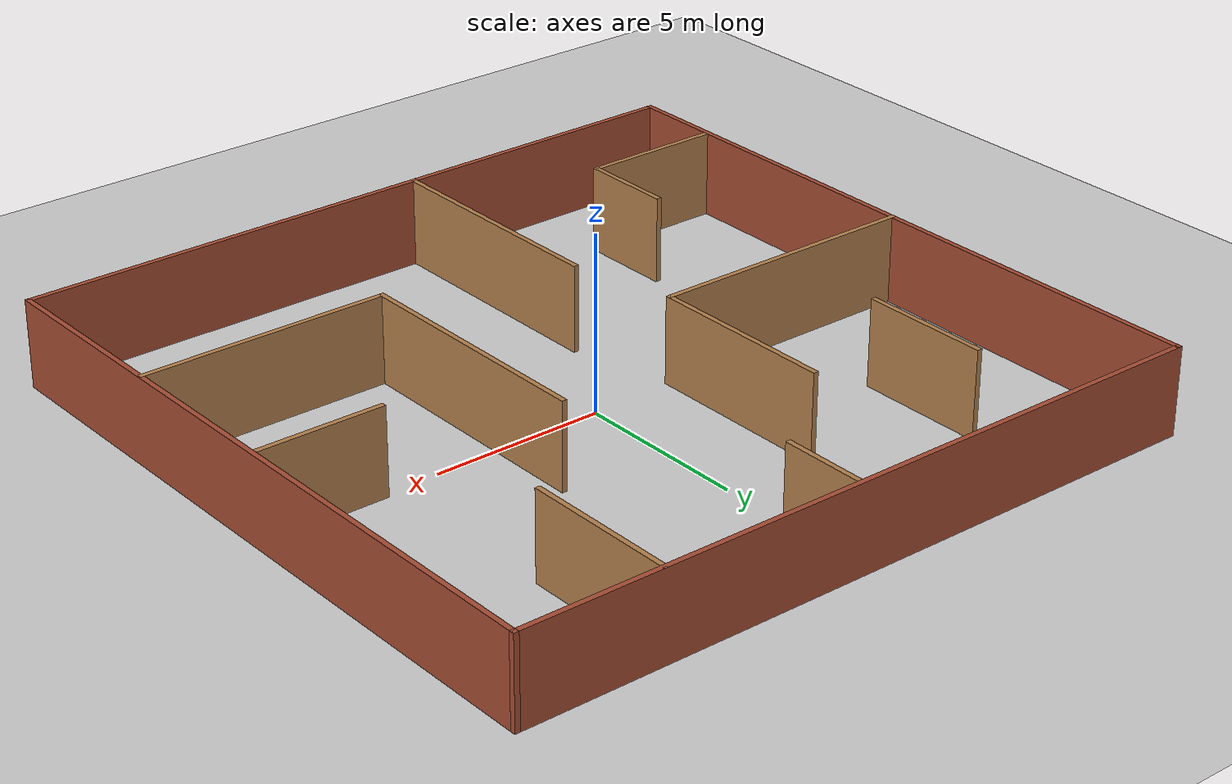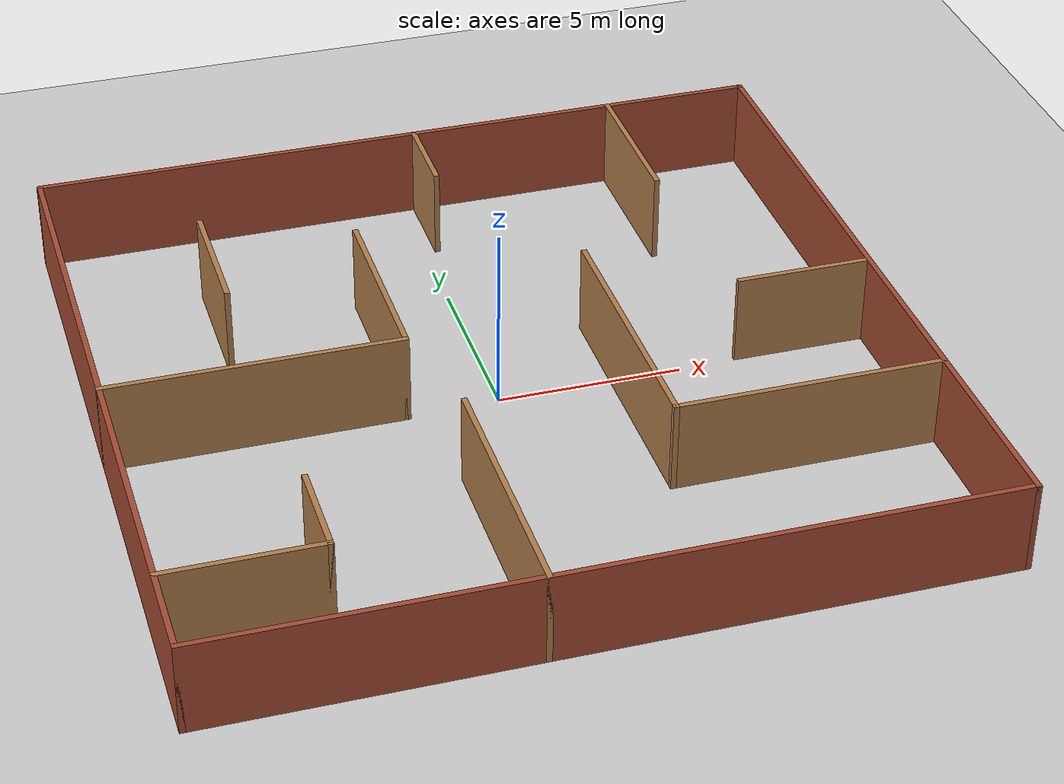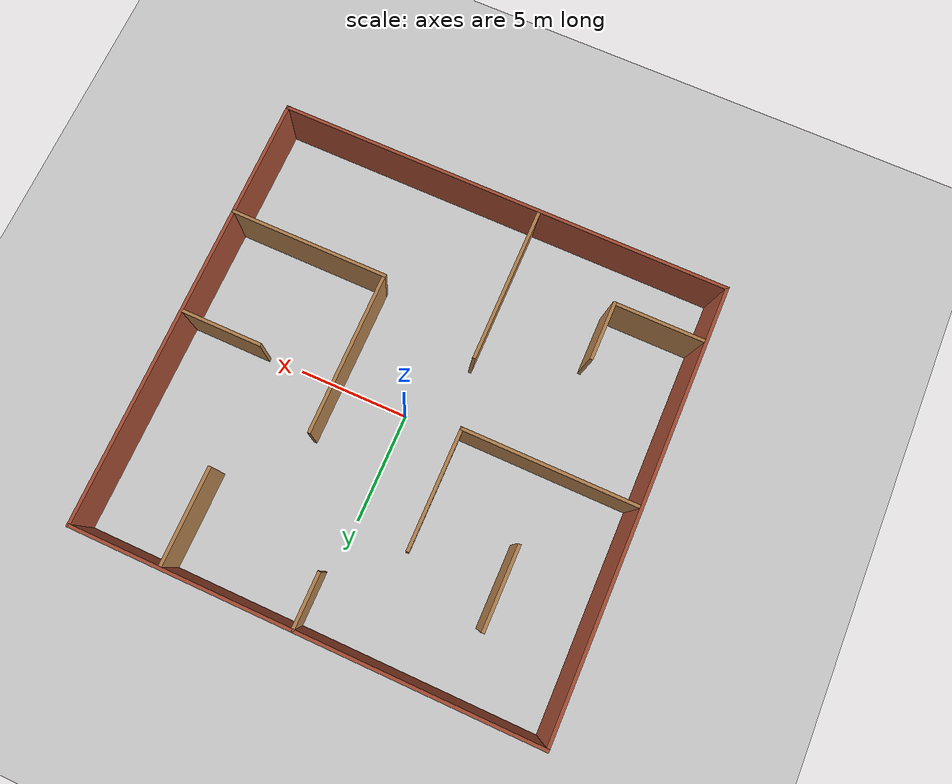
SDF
<sdf version="1.6">
 <world name="default">
  <light name="sun" type="directional">
   <pose>0 0 10 0 -0 0</pose>
   <diffuse>0.8 0.8 0.8 1</diffuse>
   <specular>0.2 0.2 0.2 1</specular>
   <attenuation>
    <range>1000</range>
    <constant>0.9</constant>
    <linear>0.01</linear>
    <quadratic>0.001</quadratic>
   </attenuation>
   <direction>-0.5 0.1 -0.9</direction>
  </light>
  <model name="ground_plane">
   <static>1</static>
   <link name="link">
    <collision name="collision">
     <geometry><plane><normal>0 0 1</normal><size>100 100</size></plane></geometry>
     <surface><friction><ode><mu>100</mu><mu2>50</mu2></ode></friction></surface>
    </collision>
    <visual name="visual">
     <cast_shadows>0</cast_shadows>
     <geometry><plane><normal>0 0 1</normal><size>100 100</size></plane></geometry>
     <material>
      <script><uri>file://media/materials/scripts/gazebo.material</uri><name>Gazebo/Grey</name></script>
     </material>
    </visual>
   </link>
  </model>
  <gravity>0 0 -9.8</gravity>
  <magnetic_field>6e-06 2.3e-05 -4.2e-05</magnetic_field>
  <atmosphere type="adiabatic"/>
  <physics name="default_physics" default="0" type="ode">
   <max_step_size>0.001</max_step_size>
   <real_time_factor>1</real_time_factor>
   <real_time_update_rate>1000</real_time_update_rate>
  </physics>
  <scene><ambient>0.4 0.4 0.4 1</ambient><background>0.7 0.7 0.7 1</background><shadows>1</shadows></scene>
  <spherical_coordinates>
   <surface_model>EARTH_WGS84</surface_model>
   <latitude_deg>0</latitude_deg>
   <longitude_deg>0</longitude_deg>
   <elevation>0</elevation>
   <heading_deg>0</heading_deg>
  </spherical_coordinates>
  <model name="maze">
   <pose>-0.046679 -0.141225 0 0 -0 0</pose>
   <link name="Wall_10">
    <collision name="Wall_10_Collision">
     <geometry><box><size>20.75 0.15 2.5</size></box></geometry>
     <pose>0 0 1.25 0 -0 0</pose>
    </collision>
    <visual name="Wall_10_Visual">
     <pose>0 0 1.25 0 -0 0</pose>
     <geometry><box><size>20.75 0.15 2.5</size></box></geometry>
     <material>
      <script><uri>file://media/materials/scripts/gazebo.material</uri><name>Gazebo/Bricks</name></script>
      <ambient>1 1 1 1</ambient>
     </material>
     <meta><layer>0</layer></meta>
    </visual>
    <pose>-0 10.05 0 0 -0 3.14159</pose>
   </link>
   <link name="Wall_11">
    <collision name="Wall_11_Collision">
     <geometry><box><size>20.25 0.15 2.5</size></box></geometry>
     <pose>0 0 1.25 0 -0 0</pose>
    </collision>
    <visual name="Wall_11_Visual">
     <pose>0 0 1.25 0 -0 0</pose>
     <geometry><box><size>20.25 0.15 2.5</size></box></geometry>
     <material>
      <script><uri>file://media/materials/scripts/gazebo.material</uri><name>Gazebo/Bricks</name></script>
      <ambient>1 1 1 1</ambient>
     </material>
     <meta><layer>0</layer></meta>
    </visual>
    <pose>-10.3 -0 0 0 -0 -1.5708</pose>
   </link>
   <link name="Wall_13">
    <collision name="Wall_13_Collision">
     <geometry><box><size>4.25 0.15 2.5</size></box></geometry>
     <pose>0 0 1.25 0 -0 0</pose>
    </collision>
    <visual name="Wall_13_Visual">
     <pose>0 0 1.25 0 -0 0</pose>
     <geometry><box><size>4.25 0.15 2.5</size></box></geometry>
     <material>
      <script><uri>file://media/materials/scripts/gazebo.material</uri><name>Gazebo/Wood</name></script>
      <ambient>1 1 1 1</ambient>
     </material>
     <meta><layer>0</layer></meta>
    </visual>
    <pose>-8.25 -7.49118 0 0 -0 0</pose>
   </link>
   <link name="Wall_14">
    <collision name="Wall_14_Collision">
     <geometry><box><size>2.75 0.15 2.5</size></box></geometry>
     <pose>0 0 1.25 0 -0 0</pose>
    </collision>
    <visual name="Wall_14_Visual">
     <pose>0 0 1.25 0 -0 0</pose>
     <geometry><box><size>2.75 0.15 2.5</size></box></geometry>
     <material>
      <script><uri>file://media/materials/scripts/gazebo.material</uri><name>Gazebo/Wood</name></script>
      <ambient>1 1 1 1</ambient>
     </material>
     <meta><layer>0</layer></meta>
    </visual>
    <pose>-6.2 -6.19118 0 0 -0 1.5708</pose>
   </link>
   <link name="Wall_16">
    <collision name="Wall_16_Collision">
     <geometry><box><size>8 0.15 2.5</size></box></geometry>
     <pose>0 0 1.25 0 -0 0</pose>
    </collision>
    <visual name="Wall_16_Visual">
     <pose>0 0 1.25 0 -0 0</pose>
     <geometry><box><size>8 0.15 2.5</size></box></geometry>
     <material>
      <script><uri>file://media/materials/scripts/gazebo.material</uri><name>Gazebo/Wood</name></script>
      <ambient>1 1 1 1</ambient>
     </material>
     <meta><layer>0</layer></meta>
    </visual>
    <pose>-6.375 0.045689 0 0 -0 0</pose>
   </link>
   <link name="Wall_17">
    <collision name="Wall_17_Collision">
     <geometry><box><size>5.5 0.15 2.5</size></box></geometry>
     <pose>0 0 1.25 0 -0 0</pose>
    </collision>
    <visual name="Wall_17_Visual">
     <pose>0 0 1.25 0 -0 0</pose>
     <geometry><box><size>5.5 0.15 2.5</size></box></geometry>
     <material>
      <script><uri>file://media/materials/scripts/gazebo.material</uri><name>Gazebo/Wood</name></script>
      <ambient>1 1 1 1</ambient>
     </material>
     <meta><layer>0</layer></meta>
    </visual>
    <pose>-2.45 2.72069 0 0 -0 1.5708</pose>
   </link>
   <link name="Wall_19">
    <collision name="Wall_19_Collision">
     <geometry><box><size>3.75 0.15 2.5</size></box></geometry>
     <pose>0 0 1.25 0 -0 0</pose>
    </collision>
    <visual name="Wall_19_Visual">
     <pose>0 0 1.25 0 -0 0</pose>
     <geometry><box><size>3.75 0.15 2.5</size></box></geometry>
     <material>
      <script><uri>file://media/materials/scripts/gazebo.material</uri><name>Gazebo/Wood</name></script>
      <ambient>1 1 1 1</ambient>
     </material>
     <meta><layer>0</layer></meta>
    </visual>
    <pose>-6.39199 5.24193 0 0 -0 1.5708</pose>
   </link>
   <link name="Wall_21">
    <collision name="Wall_21_Collision">
     <geometry><box><size>3.75 0.15 2.5</size></box></geometry>
     <pose>0 0 1.25 0 -0 0</pose>
    </collision>
    <visual name="Wall_21_Visual">
     <pose>0 0 1.25 0 -0 0</pose>
     <geometry><box><size>3.75 0.15 2.5</size></box></geometry>
     <material>
      <script><uri>file://media/materials/scripts/gazebo.material</uri><name>Gazebo/Wood</name></script>
      <ambient>1 1 1 1</ambient>
     </material>
     <meta><layer>0</layer></meta>
    </visual>
    <pose>8.46357 0.231785 0 0 -0 3.14159</pose>
   </link>
   <link name="Wall_23">
    <collision name="Wall_23_Collision">
     <geometry><box><size>4.5 0.15 2.5</size></box></geometry>
     <pose>0 0 1.25 0 -0 0</pose>
    </collision>
    <visual name="Wall_23_Visual">
     <pose>0 0 1.25 0 -0 0</pose>
     <geometry><box><size>4.5 0.15 2.5</size></box></geometry>
     <material>
      <script><uri>file://media/materials/scripts/gazebo.material</uri><name>Gazebo/Wood</name></script>
      <ambient>1 1 1 1</ambient>
     </material>
     <meta><layer>0</layer></meta>
    </visual>
    <pose>6.21599 7.87333 0 0 -0 -1.5708</pose>
   </link>
   <link name="Wall_25">
    <collision name="Wall_25_Collision">
     <geometry><box><size>7.25 0.15 2.5</size></box></geometry>
     <pose>0 0 1.25 0 -0 0</pose>
    </collision>
    <visual name="Wall_25_Visual">
     <pose>0 0 1.25 0 -0 0</pose>
     <geometry><box><size>7.25 0.15 2.5</size></box></geometry>
     <material>
      <script><uri>file://media/materials/scripts/gazebo.material</uri><name>Gazebo/Wood</name></script>
      <ambient>1 1 1 1</ambient>
     </material>
     <meta><layer>0</layer></meta>
    </visual>
    <pose>-1.7396 -6.5 0 0 -0 1.5708</pose>
   </link>
   <link name="Wall_27">
    <collision name="Wall_27_Collision">
     <geometry><box><size>7.25 0.15 2.5</size></box></geometry>
     <pose>0 0 1.25 0 -0 0</pose>
    </collision>
    <visual name="Wall_27_Visual">
     <pose>0 0 1.25 0 -0 0</pose>
     <geometry><box><size>7.25 0.15 2.5</size></box></geometry>
     <material>
      <script><uri>file://media/materials/scripts/gazebo.material</uri><name>Gazebo/Wood</name></script>
      <ambient>1 1 1 1</ambient>
     </material>
     <meta><layer>0</layer></meta>
    </visual>
    <pose>6.71357 -4.65323 0 0 -0 3.14159</pose>
   </link>
   <link name="Wall_28">
    <collision name="Wall_28_Collision">
     <geometry><box><size>7.5 0.15 2.5</size></box></geometry>
     <pose>0 0 1.25 0 -0 0</pose>
    </collision>
    <visual name="Wall_28_Visual">
     <pose>0 0 1.25 0 -0 0</pose>
     <geometry><box><size>7.5 0.15 2.5</size></box></geometry>
     <material>
      <script><uri>file://media/materials/scripts/gazebo.material</uri><name>Gazebo/Wood</name></script>
      <ambient>1 1 1 1</ambient>
     </material>
     <meta><layer>0</layer></meta>
    </visual>
    <pose>3.16357 -0.978226 0 0 -0 1.5708</pose>
   </link>
   <link name="Wall_30">
    <collision name="Wall_30_Collision">
     <geometry><box><size>2.5 0.15 2.5</size></box></geometry>
     <pose>0 0 1.25 0 -0 0</pose>
    </collision>
    <visual name="Wall_30_Visual">
     <pose>0 0 1.25 0 -0 0</pose>
     <geometry><box><size>2.5 0.15 2.5</size></box></geometry>
     <material>
      <script><uri>file://media/materials/scripts/gazebo.material</uri><name>Gazebo/Wood</name></script>
      <ambient>1 1 1 1</ambient>
     </material>
     <meta><layer>0</layer></meta>
    </visual>
    <pose>0.4005 8.82681 0 0 -0 -1.5708</pose>
   </link>
   <link name="Wall_8">
    <collision name="Wall_8_Collision">
     <geometry><box><size>20.75 0.15 2.5</size></box></geometry>
     <pose>0 0 1.25 0 -0 0</pose>
    </collision>
    <visual name="Wall_8_Visual">
     <pose>0 0 1.25 0 -0 0</pose>
     <geometry><box><size>20.75 0.15 2.5</size></box></geometry>
     <material>
      <script><uri>file://media/materials/scripts/gazebo.material</uri><name>Gazebo/Bricks</name></script>
      <ambient>1 1 1 1</ambient>
     </material>
     <meta><layer>0</layer></meta>
    </visual>
    <pose>-0 -10.05 0 0 -0 0</pose>
   </link>
   <link name="Wall_9">
    <collision name="Wall_9_Collision">
     <geometry><box><size>20.25 0.15 2.5</size></box></geometry>
     <pose>0 0 1.25 0 -0 0</pose>
    </collision>
    <visual name="Wall_9_Visual">
     <pose>0 0 1.25 0 -0 0</pose>
     <geometry><box><size>20.25 0.15 2.5</size></box></geometry>
     <material>
      <script><uri>file://media/materials/scripts/gazebo.material</uri><name>Gazebo/Bricks</name></script>
      <ambient>1 1 1 1</ambient>
     </material>
     <meta><layer>0</layer></meta>
    </visual>
    <pose>10.3 -0 0 0 -0 1.5708</pose>
   </link>
   <static>1</static>
  </model>
 </world>
</sdf>
